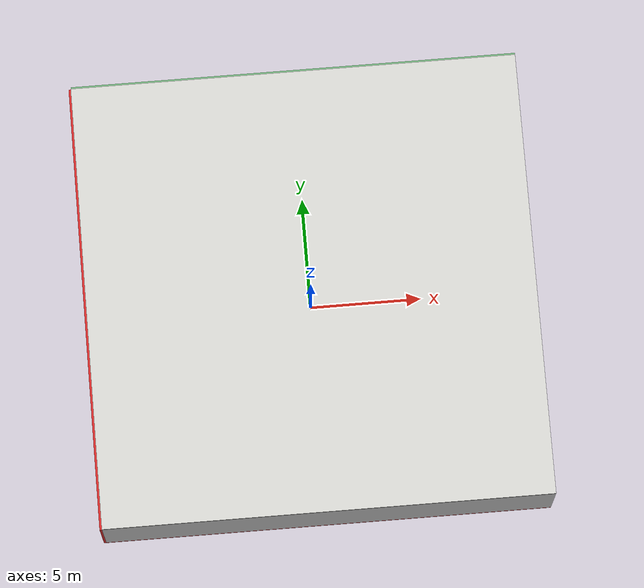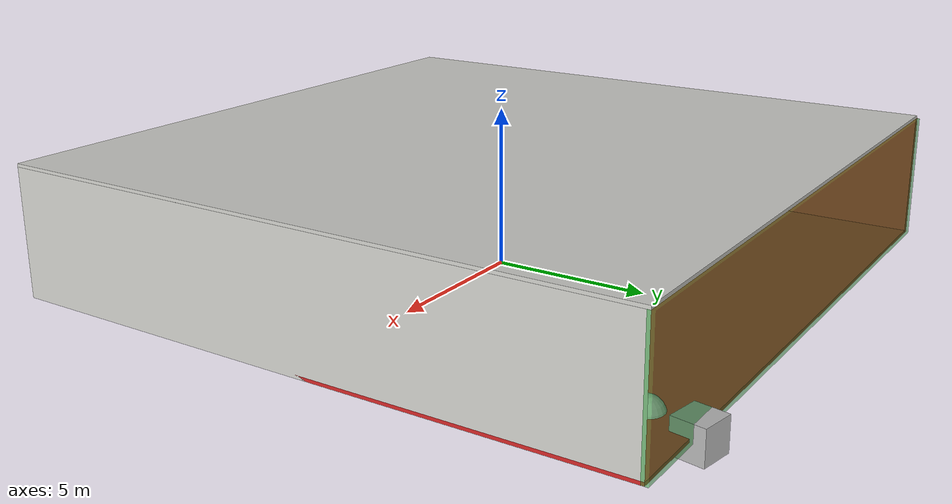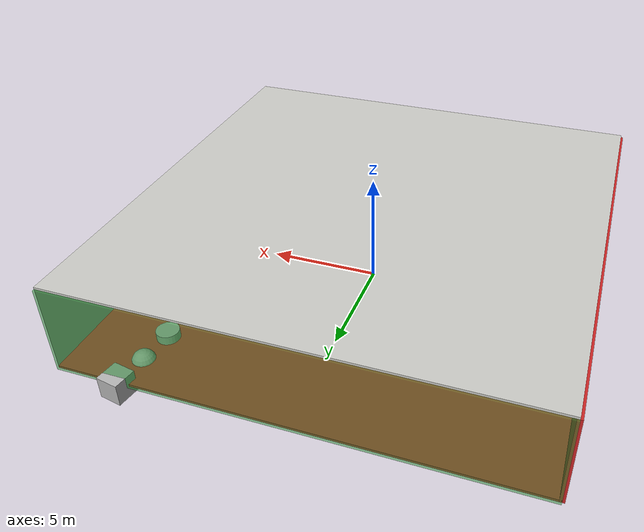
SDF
<sdf version="1.4">
 <world name="default">
  <physics type="ode">
   <max_step_size>0.001</max_step_size>
   <real_time_factor>1</real_time_factor>
   <real_time_update_rate>1000</real_time_update_rate>
   <gravity>0 0 -9.8</gravity>
  </physics>
  <scene><ambient>0.4 0.4 0.4 1</ambient><background>0.7 0.7 0.7 1</background><shadows>1</shadows></scene>
  <model name="Surrounding">
   <static>1</static>
   <link name="Ceiling">
    <collision name="Ceiling_Collision"><geometry><box><size>20 20 0.1</size></box></geometry></collision>
    <visual name="Ceiling_Visual">
     <geometry><box><size>20 20 0.1</size></box></geometry>
     <material>
      <script><uri>file://media/materials/scripts/gazebo.material</uri><name>Gazebo/CeilingTiled</name></script>
     </material>
    </visual>
    <pose>0 0 4.05 0 0 0</pose>
   </link>
   <link name="Wall_South">
    <collision name="Wall_South_Collision">
     <geometry><box><size>20 0 4</size></box></geometry>
     <pose>0 0 2 0 -0 0</pose>
    </collision>
    <visual name="Wall_South_Visual">
     <pose>0 0 2 0 -0 0</pose>
     <geometry><box><size>20 0 4</size></box></geometry>
     <material>
      <script><uri>file://media/materials/scripts/gazebo.material</uri><name>Gazebo/JointAnchor</name></script>
     </material>
    </visual>
    <velocity_decay><linear>0</linear><angular>0</angular></velocity_decay>
    <pose>0 -10 0 0 -0 0</pose>
   </link>
   <link name="Wall_East">
    <collision name="Wall_21_Collision">
     <geometry><box><size>20 0 4</size></box></geometry>
     <pose>0 0 2 0 -0 0</pose>
    </collision>
    <visual name="Wall_21_Visual">
     <pose>0 0 2 0 -0 0</pose>
     <geometry><box><size>20 0 4</size></box></geometry>
     <material>
      <script><uri>file://media/materials/scripts/gazebo.material</uri><name>Gazebo/CeilingTiled</name></script>
     </material>
    </visual>
    <velocity_decay><linear>0</linear><angular>0</angular></velocity_decay>
    <pose>10 0 0 0 -0 1.5708</pose>
   </link>
   <link name="Wall_North">
    <collision name="Wall_22_Collision">
     <geometry><box><size>20 0.2 4</size></box></geometry>
     <pose>0 0 2 0 -0 0</pose>
    </collision>
    <visual name="Wall_22_Visual">
     <pose>0 0 2 0 -0 0</pose>
     <geometry><box><size>20 0.2 4</size></box></geometry>
     <material>
      <script><uri>file://media/materials/scripts/gazebo.material</uri><name>Gazebo/GreenTransparent</name></script>
     </material>
    </visual>
    <velocity_decay><linear>0</linear><angular>0</angular></velocity_decay>
    <pose>0 10 0 0 -0 0</pose>
   </link>
   <link name="Wall_West">
    <collision name="Wall_23_Collision">
     <geometry><box><size>20 0.2 4</size></box></geometry>
     <pose>0 0 2 0 -0 0</pose>
    </collision>
    <visual name="Wall_23_Visual">
     <pose>0 0 2 0 -0 0</pose>
     <geometry><box><size>20 0.2 4</size></box></geometry>
     <material>
      <script><uri>file://media/materials/scripts/gazebo.material</uri><name>Gazebo/Red</name></script>
     </material>
    </visual>
    <velocity_decay><linear>0</linear><angular>0</angular></velocity_decay>
    <pose>-10 0 0 0 0 -1.5708</pose>
   </link>
   <link name="Ground_link">
    <collision name="collision">
     <pose>0 0 .05 0 -0 0</pose>
     <geometry><box><size>20 20 0.1</size></box></geometry>
    </collision>
    <visual name="visual">
     <pose>0 0 .05 0 -0 0</pose>
     <geometry><box><size>20 20 0.1</size></box></geometry>
     <material>
      <script><uri>file://media/materials/scripts/gazebo.material</uri><name>Gazebo/Red</name></script>
     </material>
    </visual>
   </link>
   <static>1</static>
  </model>
  <spherical_coordinates>
   <surface_model>EARTH_WGS84</surface_model>
   <latitude_deg>0</latitude_deg>
   <longitude_deg>0</longitude_deg>
   <elevation>0</elevation>
   <heading_deg>0</heading_deg>
  </spherical_coordinates>
  <light name="lightball_0" type="diffuse">
   <diffuse>0.8 0.8 0.8 1</diffuse>
   <specular>0.2 0.2 0.2 1</specular>
   <attenuation>
    <range>100</range>
    <constant>0.7</constant>
    <linear>0.01</linear>
    <quadratic>0.001</quadratic>
   </attenuation>
   <direction>-0.5 0.1 -0.9</direction>
   <pose>-5.51619959685 -1.57099189338 2.37915779343 0 0 0</pose>
  </light>
  <include><uri>model://table</uri><pose>-8.00179567417 -1.19629656298 0 0 0 1.24303334642</pose></include>
  <include>
   <uri>model://construction_cone</uri>
   <pose>-4.93923434798 -1.89503500822 0 0 0 1.68961478527</pose>
  </include>
  <include><uri>model://table</uri><pose>-4.76683841703 0.525000926109 0 0 0 1.08898988469</pose></include>
  <include>
   <uri>model://textured_shapes</uri>
   <pose>-3.90710875026 4.17928002405 0 0 0 1.48835604917</pose>
  </include>
  <include>
   <uri>model://construction_cone</uri>
   <pose>-1.35975417513 -8.03611428385 0 0 0 1.04070584089</pose>
  </include>
  <include>
   <uri>model://construction_cone</uri>
   <pose>2.04377137109 -0.940483409089 0 0 0 0.780691470835</pose>
  </include>
  <include>
   <uri>model://textured_shapes</uri>
   <pose>6.96736717733 -0.779692292354 0 0 0 2.25121803088</pose>
  </include>
  <include>
   <uri>model://textured_shapes</uri>
   <pose>6.96961366501 8.5474577237 0 0 0 2.96306877242</pose>
  </include>
 </world>
</sdf>

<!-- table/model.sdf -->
<sdf version="1.5">
  <model name="table">
    <static>true</static>
    <link name="link">
      <collision name="surface">
        <pose>0 0 1.0 0 0 0</pose>
        <geometry>
          <box>
            <size>1.5 0.8 0.03</size>
          </box>
        </geometry>
        <surface>
          <friction>
            <ode>
              <mu>0.6</mu>
              <mu2>0.6</mu2>
            </ode>
          </friction>
        </surface>
      </collision>
      <visual name="visual1">
        <pose>0 0 1.0 0 0 0</pose>
        <geometry>
          <box>
            <size>1.5 0.8 0.03</size>
          </box>
        </geometry>
        <material>
          <script>
            <uri>model://media/materials/scripts/gazebo.material</uri>
            <name>Gazebo/Wood</name>
          </script>
        </material>
      </visual>
      <collision name="front_left_leg">
        <pose>0.68 0.38 0.5 0 0 0</pose>
        <geometry>
          <cylinder>
            <radius>0.02</radius>
            <length>1.0</length>
          </cylinder>
        </geometry>
      </collision>
      <visual name="front_left_leg">
        <pose>0.68 0.38 0.5 0 0 0</pose>
        <geometry>
          <cylinder>
            <radius>0.02</radius>
            <length>1.0</length>
          </cylinder>
        </geometry>
        <material>
          <script>
            <uri>model://media/materials/scripts/gazebo.material</uri>
            <name>Gazebo/Grey</name>
          </script>
        </material>
      </visual>
      <collision name="front_right_leg">
        <pose>0.68 -0.38 0.5 0 0 0</pose>
        <geometry>
          <cylinder>
            <radius>0.02</radius>
            <length>1.0</length>
          </cylinder>
        </geometry>
      </collision>
      <visual name="front_right_leg">
        <pose>0.68 -0.38 0.5 0 0 0</pose>
        <geometry>
          <cylinder>
            <radius>0.02</radius>
            <length>1.0</length>
          </cylinder>
        </geometry>
        <material>
          <script>
            <uri>model://media/materials/scripts/gazebo.material</uri>
            <name>Gazebo/Grey</name>
          </script>
        </material>
      </visual>
      <collision name="back_right_leg">
        <pose>-0.68 -0.38 0.5 0 0 0</pose>
        <geometry>
          <cylinder>
            <radius>0.02</radius>
            <length>1.0</length>
          </cylinder>
        </geometry>
      </collision>
      <visual name="back_right_leg">
        <pose>-0.68 -0.38 0.5 0 0 0</pose>
        <geometry>
          <cylinder>
            <radius>0.02</radius>
            <length>1.0</length>
          </cylinder>
        </geometry>
        <material>
          <script>
            <uri>model://media/materials/scripts/gazebo.material</uri>
            <name>Gazebo/Grey</name>
          </script>
        </material>
      </visual>
      <collision name="back_left_leg">
        <pose>-0.68 0.38 0.5 0 0 0</pose>
        <geometry>
          <cylinder>
            <radius>0.02</radius>
            <length>1.0</length>
          </cylinder>
        </geometry>
      </collision>
      <visual name="back_left_leg">
        <pose>-0.68 0.38 0.5 0 0 0</pose>
        <geometry>
          <cylinder>
            <radius>0.02</radius>
            <length>1.0</length>
          </cylinder>
        </geometry>
        <material>
          <script>
            <uri>model://media/materials/scripts/gazebo.material</uri>
            <name>Gazebo/Grey</name>
          </script>
        </material>
      </visual>
    </link>
  </model>
</sdf>

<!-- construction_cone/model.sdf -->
<sdf version="1.5">
  <model name="Construction Cone">
    <link name="link">
      <collision name="collision">
        <geometry>
          <mesh>
            <scale>10 10 10</scale>
            <uri>file://isr-testbed/construction_cone/meshes/construction_cone.dae</uri>
          </mesh>
        </geometry>
      </collision>
      <visual name="visual">
        <geometry>
          <mesh>
            <scale>10 10 10</scale>
            <uri>file://isr-testbed/construction_cone/meshes/construction_cone.dae</uri>
          </mesh>
        </geometry>
      </visual>
    </link>
  </model>
</sdf>

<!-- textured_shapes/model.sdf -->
<sdf version="1.6">
  <model name="textured_shapes">
    <pose>0 0 0.5 0 0 0</pose>
    <link name="box">
      <pose>0 -1.5 0 0 0 0</pose>
      <collision name="collision">
        <geometry>
          <box>
            <size>1 1 1</size>
          </box>
        </geometry>
      </collision>
      <visual name="visual">
        <geometry>
          <box>
            <size>1 1 1</size>
          </box>
        </geometry>
        <material>
          <script>
            <uri>model://../model_source/models/textured_shapes/materials/scripts</uri>
            <uri>model://../model_source/models/textured_shapes/materials/textures</uri>
            <name>TexturedShape/Squares</name>
          </script>
        </material>
      </visual>
    </link>
    <link name="sphere">
      <collision name="collision">
        <geometry>
          <sphere>
            <radius>0.5</radius>
          </sphere>
        </geometry>
      </collision>
      <visual name="visual">
        <geometry>
          <sphere>
            <radius>0.5</radius>
          </sphere>
        </geometry>
        <material>
          <script>
            <uri>model://../model_source/models/textured_shapes/materials/scripts</uri>
            <uri>model://../model_source/models/textured_shapes/materials/textures</uri>
            <name>TexturedShape/Squares</name>
          </script>
        </material>
      </visual>
    </link>
    <link name="cylinder">
      <pose>0 1.5 0 0 0 0</pose>
      <collision name="collision">
        <geometry>
          <cylinder>
            <radius>0.5</radius>
            <length>1</length>
          </cylinder>
        </geometry>
      </collision>
      <visual name="visual">
        <geometry>
          <cylinder>
            <radius>0.5</radius>
            <length>1</length>
          </cylinder>
        </geometry>
        <material>
          <script>
            <uri>model://../model_source/models/textured_shapes/materials/scripts</uri>
            <uri>model://../model_source/models/textured_shapes/materials/textures</uri>
            <name>TexturedShape/Squares</name>
          </script>
        </material>
      </visual>
    </link>
  </model>
</sdf>
